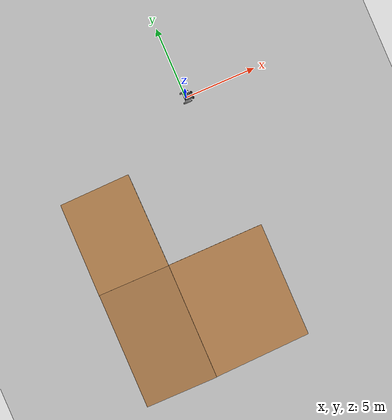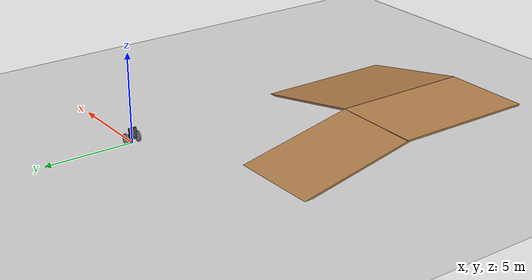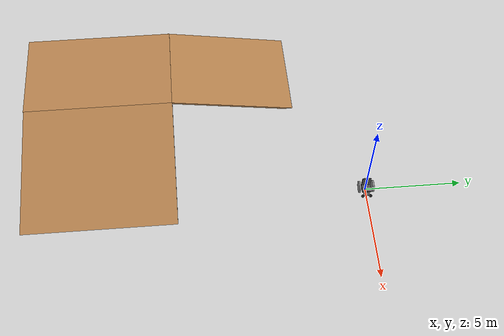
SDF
<sdf version="1.7">
 <world name="default">
  <light name="sun" type="directional">
   <pose>0 0 10 0 -0 0</pose>
   <diffuse>0.8 0.8 0.8 1</diffuse>
   <specular>0.2 0.2 0.2 1</specular>
   <attenuation>
    <range>1000</range>
    <constant>0.9</constant>
    <linear>0.01</linear>
    <quadratic>0.001</quadratic>
   </attenuation>
   <direction>-0.5 0.1 -0.9</direction>
   <spot><inner_angle>0</inner_angle><outer_angle>0</outer_angle><falloff>0</falloff></spot>
  </light>
  <model name="ground_plane">
   <static>1</static>
   <link name="link">
    <collision name="collision">
     <geometry><plane><normal>0 0 1</normal><size>100 100</size></plane></geometry>
     <surface>
      <contact><collide_bitmask>65535</collide_bitmask></contact>
      <friction><ode><mu>100</mu><mu2>50</mu2></ode></friction>
     </surface>
    </collision>
    <visual name="visual">
     <cast_shadows>0</cast_shadows>
     <geometry><plane><normal>0 0 1</normal><size>100 100</size></plane></geometry>
     <material>
      <script><uri>file://media/materials/scripts/gazebo.material</uri><name>Gazebo/Grey</name></script>
     </material>
    </visual>
   </link>
  </model>
  <gravity>0 0 -9.8</gravity>
  <magnetic_field>6e-06 2.3e-05 -4.2e-05</magnetic_field>
  <atmosphere type="adiabatic"/>
  <physics type="ode">
   <max_step_size>0.001</max_step_size>
   <real_time_factor>1</real_time_factor>
   <real_time_update_rate>1000</real_time_update_rate>
  </physics>
  <scene><ambient>0.4 0.4 0.4 1</ambient><background>0.7 0.7 0.7 1</background><shadows>1</shadows></scene>
  <audio><device>default</device></audio>
  <spherical_coordinates>
   <surface_model>EARTH_WGS84</surface_model>
   <latitude_deg>0</latitude_deg>
   <longitude_deg>0</longitude_deg>
   <elevation>0</elevation>
   <heading_deg>0</heading_deg>
  </spherical_coordinates>
  <model name="my_bot">
   <link name="base_link">
    <inertial>
     <pose>0.102318 0 0.298543 0 -0 0</pose>
     <mass>151</mass>
     <inertia>
      <ixx>7.71564</ixx>
      <ixy>0</ixy>
      <ixz>0.0764901</ixz>
      <iyy>7.79733</iyy>
      <iyz>0</iyz>
      <izz>6.41425</izz>
     </inertia>
    </inertial>
    <collision name="base_link_fixed_joint_lump__chassis_collision">
     <pose>0.1 0 0.3 0 -0 0</pose>
     <geometry><box><size>0.45 0.45 0.1</size></box></geometry>
    </collision>
    <collision name="base_link_fixed_joint_lump__chassis_collision_1">
     <pose>-0.1 0 0.6 0 -0 0</pose>
     <geometry><box><size>0.05 0.45 0.6</size></box></geometry>
    </collision>
    <collision name="base_link_fixed_joint_lump__fl_caster_collision_2">
     <pose>0.45 0.2 0.08 0 -0 0</pose>
     <geometry><sphere><radius>0.08</radius></sphere></geometry>
     <surface><friction><ode><mu>0.001</mu><mu2>0.001</mu2></ode></friction></surface>
    </collision>
    <collision name="base_link_fixed_joint_lump__fr_caster_collision_3">
     <pose>0.45 -0.2 0.08 0 -0 0</pose>
     <geometry><sphere><radius>0.08</radius></sphere></geometry>
     <surface><friction><ode><mu>0.001</mu><mu2>0.001</mu2></ode></friction></surface>
    </collision>
    <visual name="base_link_fixed_joint_lump__chassis_visual">
     <pose>0.1 0 0.3 0 -0 0</pose>
     <geometry><box><size>0.45 0.45 0.1</size></box></geometry>
     <material>
      <script><name>Gazebo/DarkGrey</name><uri>file://media/materials/scripts/gazebo.material</uri></script>
     </material>
    </visual>
    <visual name="base_link_fixed_joint_lump__chassis_visual_1">
     <pose>-0.1 0 0.6 0 -0 0</pose>
     <geometry><box><size>0.05 0.45 0.6</size></box></geometry>
     <material>
      <script><name>Gazebo/DarkGrey</name><uri>file://media/materials/scripts/gazebo.material</uri></script>
     </material>
    </visual>
    <visual name="base_link_fixed_joint_lump__chassis_visual_2">
     <pose>0.3 0 0.2 0 -0 0</pose>
     <geometry><box><size>0.4 0.3 0.05</size></box></geometry>
     <material>
      <script><name>Gazebo/DarkGrey</name><uri>file://media/materials/scripts/gazebo.material</uri></script>
     </material>
    </visual>
    <visual name="base_link_fixed_joint_lump__fl_caster_visual_3">
     <pose>0.45 0.2 0.08 0 -0 0</pose>
     <geometry><sphere><radius>0.08</radius></sphere></geometry>
     <material>
      <script><name>Gazebo/Black</name><uri>file://media/materials/scripts/gazebo.material</uri></script>
     </material>
    </visual>
    <visual name="base_link_fixed_joint_lump__fr_caster_visual_4">
     <pose>0.45 -0.2 0.08 0 -0 0</pose>
     <geometry><sphere><radius>0.08</radius></sphere></geometry>
     <material>
      <script><name>Gazebo/Black</name><uri>file://media/materials/scripts/gazebo.material</uri></script>
     </material>
    </visual>
   </link>
   <joint name="left_wheel_joint" type="revolute">
    <pose relative_to="base_link">0 0.35 0.3 -1.5708 0 0</pose>
    <parent>base_link</parent>
    <child>left_wheel</child>
    <axis>
     <xyz>0 0 1</xyz>
     <limit><effort>100</effort><velocity>10</velocity><lower>-1e+16</lower><upper>1e+16</upper></limit>
     <dynamics>
      <damping>0.5</damping>
      <friction>0.1</friction>
      <spring_reference>0</spring_reference>
      <spring_stiffness>0</spring_stiffness>
     </dynamics>
    </axis>
    <physics>
     <provide_feedback>1</provide_feedback>
     <ode><limit><cfm>0</cfm><erp>0.2</erp></limit><provide_feedback>1</provide_feedback></ode>
    </physics>
   </joint>
   <link name="left_wheel">
    <pose relative_to="left_wheel_joint">0 0 0 0 -0 0</pose>
    <inertial>
     <mass>2</mass>
     <inertia><ixx>0.0460667</ixx><ixy>0</ixy><ixz>0</ixz><iyy>0.0460667</iyy><iyz>0</iyz><izz>0.09</izz></inertia>
    </inertial>
    <collision name="left_wheel_collision">
     <geometry><cylinder><length>0.08</length><radius>0.3</radius></cylinder></geometry>
     <surface><friction><ode><mu>1</mu><mu2>1</mu2></ode></friction></surface>
    </collision>
    <visual name="left_wheel_visual">
     <geometry><cylinder><length>0.08</length><radius>0.3</radius></cylinder></geometry>
     <material>
      <script><name>Gazebo/Grey</name><uri>file://media/materials/scripts/gazebo.material</uri></script>
     </material>
    </visual>
   </link>
   <joint name="right_wheel_joint" type="revolute">
    <pose relative_to="base_link">0 -0.35 0.3 1.5708 -0 0</pose>
    <parent>base_link</parent>
    <child>right_wheel</child>
    <axis>
     <xyz>0 0 -1</xyz>
     <limit><effort>100</effort><velocity>10</velocity><lower>-1e+16</lower><upper>1e+16</upper></limit>
     <dynamics>
      <damping>0.5</damping>
      <friction>0.1</friction>
      <spring_reference>0</spring_reference>
      <spring_stiffness>0</spring_stiffness>
     </dynamics>
    </axis>
    <physics>
     <provide_feedback>1</provide_feedback>
     <ode><limit><cfm>0</cfm><erp>0.2</erp></limit><provide_feedback>1</provide_feedback></ode>
    </physics>
   </joint>
   <link name="right_wheel">
    <pose relative_to="right_wheel_joint">0 0 0 0 -0 0</pose>
    <inertial>
     <mass>2</mass>
     <inertia><ixx>0.0460667</ixx><ixy>0</ixy><ixz>0</ixz><iyy>0.0460667</iyy><iyz>0</iyz><izz>0.09</izz></inertia>
    </inertial>
    <collision name="right_wheel_collision">
     <geometry><cylinder><length>0.08</length><radius>0.3</radius></cylinder></geometry>
     <surface><friction><ode><mu>1</mu><mu2>1</mu2></ode></friction></surface>
    </collision>
    <visual name="right_wheel_visual">
     <geometry><cylinder><length>0.08</length><radius>0.3</radius></cylinder></geometry>
     <material>
      <script><name>Gazebo/Grey</name><uri>file://media/materials/scripts/gazebo.material</uri></script>
     </material>
    </visual>
   </link>
   <plugin name="diff_drive" filename="libgazebo_ros_diff_drive.so">
    <left_joint>left_wheel_joint</left_joint>
    <right_joint>right_wheel_joint</right_joint>
    <wheel_separation>0.7</wheel_separation>
    <wheel_diameter>0.6</wheel_diameter>
    <ros><remapping>cmd_vel:=cmd_vel_sim</remapping><remapping>odom:=odom</remapping></ros>
    <max_wheel_torque>200</max_wheel_torque>
    <max_wheel_acceleration>10.0</max_wheel_acceleration>
    <odometry_frame>odom</odometry_frame>
    <robot_base_frame>base_link</robot_base_frame>
    <publish_odom>1</publish_odom>
    <publish_odom_tf>1</publish_odom_tf>
    <publish_wheel_tf>1</publish_wheel_tf>
   </plugin>
   <plugin name="ft_sensor" filename="libgazebo_ros_ft_sensor.so">
    <updateRate>50.0</updateRate>
    <topicName>ft_sensor_topic</topicName>
    <joint_name>right_wheel_joint</joint_name>
    <ros><namespace>/right_wheel</namespace><remapping>wrench:=torque_feedback</remapping></ros>
   </plugin>
   <static>0</static>
   <plugin name="ft_sensor" filename="libgazebo_ros_ft_sensor.so">
    <updateRate>50.0</updateRate>
    <topicName>ft_sensor_topic</topicName>
    <joint_name>left_wheel_joint</joint_name>
    <ros><namespace>/left_wheel</namespace><remapping>wrench:=torque_feedback</remapping></ros>
   </plugin>
   <pose>0.007463 0.004311 -5e-06 0 -1.2e-05 -0.009991</pose>
  </model>
  <model name="ramp_1">
   <link name="link">
    <inertial>
     <mass>700</mass>
     <inertia><ixx>116.667</ixx><ixy>0</ixy><ixz>0</ixz><iyy>116.667</iyy><iyz>0</iyz><izz>116.667</izz></inertia>
    </inertial>
    <pose>0.571628 1.22127 -0.2 0 0.2 0</pose>
    <visual name="visual">
     <geometry><box><size>10 8 0.1</size></box></geometry>
     <material>
      <script><name>Gazebo/Wood</name><uri>file://media/materials/scripts/gazebo.material</uri></script>
      <shader type="pixel"><normal_map>__default__</normal_map></shader>
      <ambient>0.3 0.3 0.3 1</ambient>
      <diffuse>0.7 0.7 0.7 1</diffuse>
      <specular>0.01 0.01 0.01 1</specular>
      <emissive>0 0 0 1</emissive>
     </material>
    </visual>
    <collision name="collision">
     <geometry><box><size>10 8 0.1</size></box></geometry>
     <surface>
      <friction>
       <ode><mu>1</mu><mu2>1</mu2><fdir1>0 0 0</fdir1><slip1>0</slip1><slip2>0</slip2></ode>
       <torsional>
        <coefficient>1</coefficient>
        <patch_radius>0</patch_radius>
        <surface_radius>0</surface_radius>
        <use_patch_radius>1</use_patch_radius>
        <ode><slip>0</slip></ode>
       </torsional>
      </friction>
      <bounce><restitution_coefficient>0</restitution_coefficient><threshold>1e+06</threshold></bounce>
      <contact>
       <collide_without_contact>0</collide_without_contact>
       <collide_without_contact_bitmask>1</collide_without_contact_bitmask>
       <collide_bitmask>1</collide_bitmask>
       <ode>
        <soft_cfm>0</soft_cfm>
        <soft_erp>0.2</soft_erp>
        <kp>1e+13</kp>
        <kd>1</kd>
        <max_vel>0.01</max_vel>
        <min_depth>0</min_depth>
       </ode>
       <bullet>
        <split_impulse>1</split_impulse>
        <split_impulse_penetration_threshold>-0.01</split_impulse_penetration_threshold>
        <soft_cfm>0</soft_cfm>
        <soft_erp>0.2</soft_erp>
        <kp>1e+13</kp>
        <kd>1</kd>
       </bullet>
      </contact>
     </surface>
    </collision>
   </link>
   <static>1</static>
   <pose>-1.13884 -15.0428 0.5 0 -0 0</pose>
  </model>
  <model name="ramp_flat">
   <link name="link">
    <inertial>
     <mass>700</mass>
     <inertia><ixx>116.667</ixx><ixy>0</ixy><ixz>0</ixz><iyy>116.667</iyy><iyz>0</iyz><izz>116.667</izz></inertia>
    </inertial>
    <pose>-1.73488 -4.25338 0.776065 0 -0 0</pose>
    <visual name="visual">
     <geometry><box><size>5 8 0.1</size></box></geometry>
     <material>
      <script><name>Gazebo/Wood</name><uri>file://media/materials/scripts/gazebo.material</uri></script>
      <shader type="pixel"><normal_map>__default__</normal_map></shader>
      <ambient>0.3 0.3 0.3 1</ambient>
      <diffuse>0.7 0.7 0.7 1</diffuse>
      <specular>0.01 0.01 0.01 1</specular>
      <emissive>0 0 0 1</emissive>
     </material>
    </visual>
    <collision name="collision">
     <geometry><box><size>5 8 0.1</size></box></geometry>
     <surface>
      <friction>
       <ode><mu>1</mu><mu2>1</mu2><fdir1>0 0 0</fdir1><slip1>0</slip1><slip2>0</slip2></ode>
       <torsional>
        <coefficient>1</coefficient>
        <patch_radius>0</patch_radius>
        <surface_radius>0</surface_radius>
        <use_patch_radius>1</use_patch_radius>
        <ode><slip>0</slip></ode>
       </torsional>
      </friction>
      <bounce><restitution_coefficient>0</restitution_coefficient><threshold>1e+06</threshold></bounce>
      <contact>
       <collide_without_contact>0</collide_without_contact>
       <collide_without_contact_bitmask>1</collide_without_contact_bitmask>
       <collide_bitmask>1</collide_bitmask>
       <ode>
        <soft_cfm>0</soft_cfm>
        <soft_erp>0.2</soft_erp>
        <kp>1e+13</kp>
        <kd>1</kd>
        <max_vel>0.01</max_vel>
        <min_depth>0</min_depth>
       </ode>
       <bullet>
        <split_impulse>1</split_impulse>
        <split_impulse_penetration_threshold>-0.01</split_impulse_penetration_threshold>
        <soft_cfm>0</soft_cfm>
        <soft_erp>0.2</soft_erp>
        <kp>1e+13</kp>
        <kd>1</kd>
       </bullet>
      </contact>
     </surface>
    </collision>
   </link>
   <static>1</static>
   <pose>-6.20783 -9.5911 0.5 0 -0 0</pose>
  </model>
  <model name="ramp_2">
   <link name="link">
    <inertial>
     <mass>700</mass>
     <inertia><ixx>116.667</ixx><ixy>0</ixy><ixz>0</ixz><iyy>116.667</iyy><iyz>0</iyz><izz>116.667</izz></inertia>
    </inertial>
    <pose>0.516413 -0.041409 -0.219595 0 0.2 0</pose>
    <visual name="visual">
     <geometry><box><size>10 5 0.1</size></box></geometry>
     <material>
      <script><name>Gazebo/Wood</name><uri>file://media/materials/scripts/gazebo.material</uri></script>
      <shader type="pixel"><normal_map>__default__</normal_map></shader>
      <ambient>0.3 0.3 0.3 1</ambient>
      <diffuse>0.7 0.7 0.7 1</diffuse>
      <specular>0.01 0.01 0.01 1</specular>
      <emissive>0 0 0 1</emissive>
     </material>
    </visual>
    <collision name="collision">
     <geometry><box><size>10 5 0.1</size></box></geometry>
     <surface>
      <friction>
       <ode><mu>1</mu><mu2>1</mu2><fdir1>0 0 0</fdir1><slip1>0</slip1><slip2>0</slip2></ode>
       <torsional>
        <coefficient>1</coefficient>
        <patch_radius>0</patch_radius>
        <surface_radius>0</surface_radius>
        <use_patch_radius>1</use_patch_radius>
        <ode><slip>0</slip></ode>
       </torsional>
      </friction>
      <bounce><restitution_coefficient>0</restitution_coefficient><threshold>1e+06</threshold></bounce>
      <contact>
       <collide_without_contact>0</collide_without_contact>
       <collide_without_contact_bitmask>1</collide_without_contact_bitmask>
       <collide_bitmask>1</collide_bitmask>
       <ode>
        <soft_cfm>0</soft_cfm>
        <soft_erp>0.2</soft_erp>
        <kp>1e+13</kp>
        <kd>1</kd>
        <max_vel>0.01</max_vel>
        <min_depth>0</min_depth>
       </ode>
       <bullet>
        <split_impulse>1</split_impulse>
        <split_impulse_penetration_threshold>-0.01</split_impulse_penetration_threshold>
        <soft_cfm>0</soft_cfm>
        <soft_erp>0.2</soft_erp>
        <kp>1e+13</kp>
        <kd>1</kd>
       </bullet>
      </contact>
     </surface>
    </collision>
   </link>
   <static>1</static>
   <pose>-8.08789 -5.52186 0.5 0 -0 1.59106</pose>
  </model>
 </world>
</sdf>
